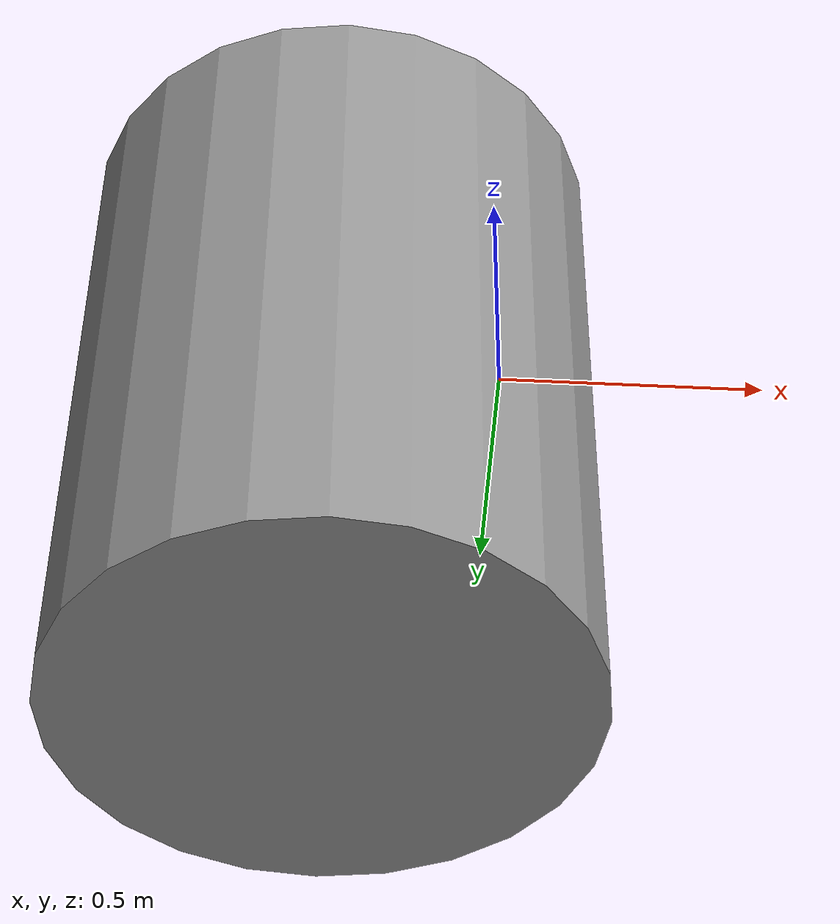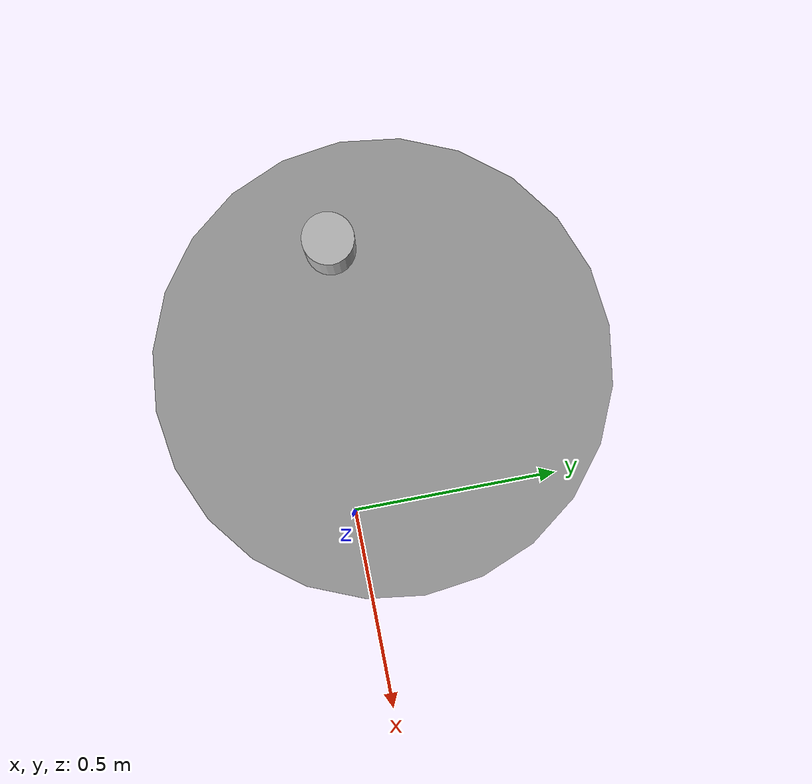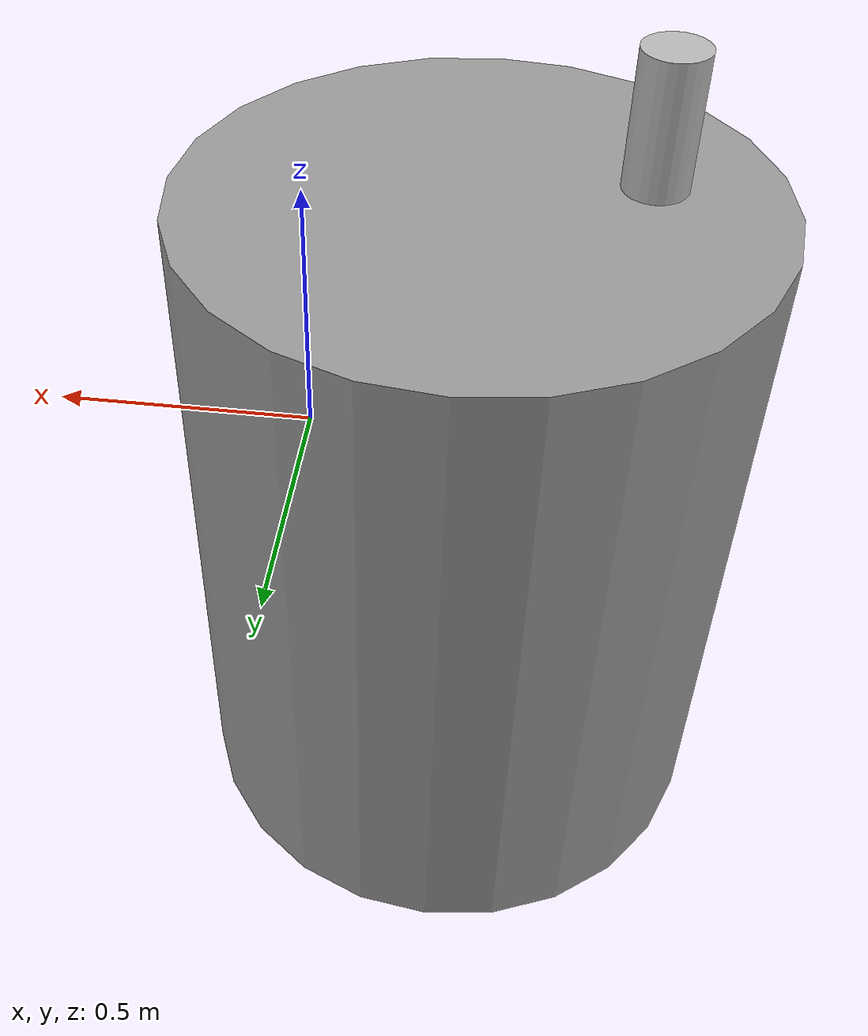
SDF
<?xml version='1.0'?>
<sdf version='1.6'>
  <model name='SuperBeerPusher2'>
    <model name='superBeerCanPusher'>
      <link name='link'>
        <pose frame=''>-0.307698 0.125854 -0.059973 0 -0 0</pose>
        <inertial>
          <mass>1.28302</mass>
          <inertia>
            <ixx>0.256193</ixx>
            <ixy>0</ixy>
            <ixz>0</ixz>
            <iyy>0.256193</iyy>
            <iyz>0</iyz>
            <izz>0.160378</izz>
          </inertia>
          <pose frame=''>0 0 0 0 -0 0</pose>
        </inertial>
        <self_collide>0</self_collide>
        <kinematic>0</kinematic>
        <visual name='visual'>
          <geometry>
            <cylinder>
              <radius>0.5</radius>
              <length>1.28302</length>
            </cylinder>
          </geometry>
          <material>
            <script>
              <name>Gazebo/Grey</name>
              <uri>file://media/materials/scripts/gazebo.material</uri>
            </script>
            <ambient>0.3 0.3 0.3 1</ambient>
            <diffuse>0.7 0.7 0.7 1</diffuse>
            <specular>0.01 0.01 0.01 1</specular>
            <emissive>0 0 0 1</emissive>
          </material>
          <pose frame=''>0 0 0 0 -0 0</pose>
          <cast_shadows>1</cast_shadows>
          <transparency>0</transparency>
        </visual>
        <collision name='collision'>
          <laser_retro>0</laser_retro>
          <max_contacts>10</max_contacts>
          <pose frame=''>0 0 0 0 -0 0</pose>
          <geometry>
            <cylinder>
              <radius>0.5</radius>
              <length>1.28302</length>
            </cylinder>
          </geometry>
          <surface>
            <friction>
              <ode>
                <mu>1</mu>
                <mu2>1</mu2>
                <fdir1>0 0 0</fdir1>
                <slip1>0</slip1>
                <slip2>0</slip2>
              </ode>
              <torsional>
                <coefficient>1</coefficient>
                <patch_radius>0</patch_radius>
                <surface_radius>0</surface_radius>
                <use_patch_radius>1</use_patch_radius>
                <ode>
                  <slip>0</slip>
                </ode>
              </torsional>
            </friction>
            <bounce>
              <restitution_coefficient>0</restitution_coefficient>
              <threshold>1e+06</threshold>
            </bounce>
            <contact>
              <collide_without_contact>0</collide_without_contact>
              <collide_without_contact_bitmask>1</collide_without_contact_bitmask>
              <collide_bitmask>1</collide_bitmask>
              <ode>
                <soft_cfm>0</soft_cfm>
                <soft_erp>0.2</soft_erp>
                <kp>1e+13</kp>
                <kd>1</kd>
                <max_vel>0.01</max_vel>
                <min_depth>0</min_depth>
              </ode>
              <bullet>
                <split_impulse>1</split_impulse>
                <split_impulse_penetration_threshold>-0.01</split_impulse_penetration_threshold>
                <soft_cfm>0</soft_cfm>
                <soft_erp>0.2</soft_erp>
                <kp>1e+13</kp>
                <kd>1</kd>
              </bullet>
            </contact>
          </surface>
        </collision>
      </link>
      <model name='beer'>
        <link name='link'>
          <pose frame=''>0 0 0.115 0 -0 0</pose>
          <inertial>
            <mass>0.39</mass>
            <inertia>
              <ixx>0.00058</ixx>
              <ixy>0</ixy>
              <ixz>0</ixz>
              <iyy>0.00058</iyy>
              <iyz>0</iyz>
              <izz>0.00019</izz>
            </inertia>
          </inertial>
          <collision name='collision'>
            <geometry>
              <cylinder>
                <radius>0.055</radius>
                <length>0.23</length>
              </cylinder>
            </geometry>
          </collision>
          <visual name='visual'>
            <geometry>
              <cylinder>
                <radius>0.055</radius>
                <length>0.23</length>
              </cylinder>
            </geometry>
            <material>
              <script>
                <uri>model://beer/materials/scripts</uri>
                <uri>model://beer/materials/textures</uri>
                <name>Beer/Diffuse</name>
              </script>
            </material>
          </visual>
        </link>
        <pose frame=''>-0.581223 0.063416 0.585565 0 -0 0</pose>
      </model>
      <static>0</static>
      <allow_auto_disable>1</allow_auto_disable>
      <pose frame=''>0 0 -0 0 -0 0</pose>
    </model>
    <static>0</static>
    <allow_auto_disable>1</allow_auto_disable>
  </model>
</sdf>
